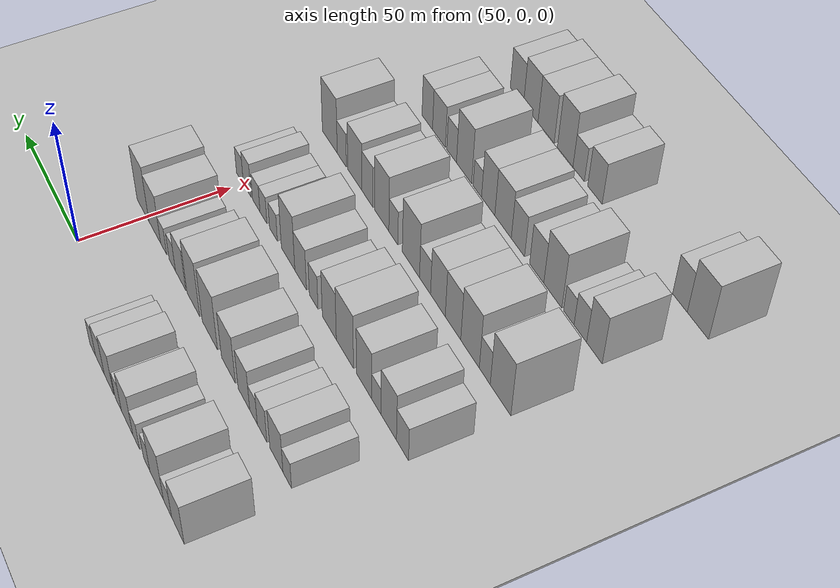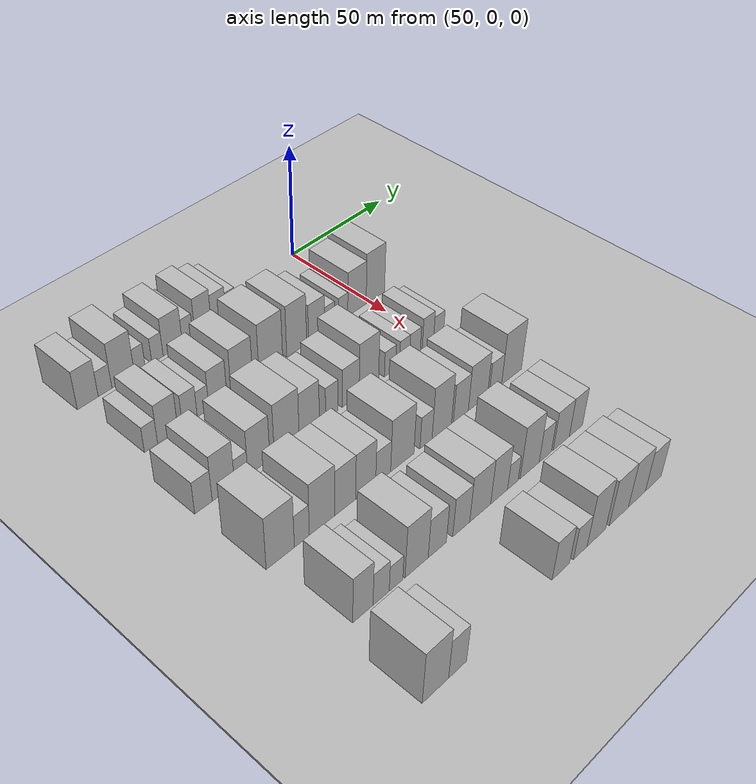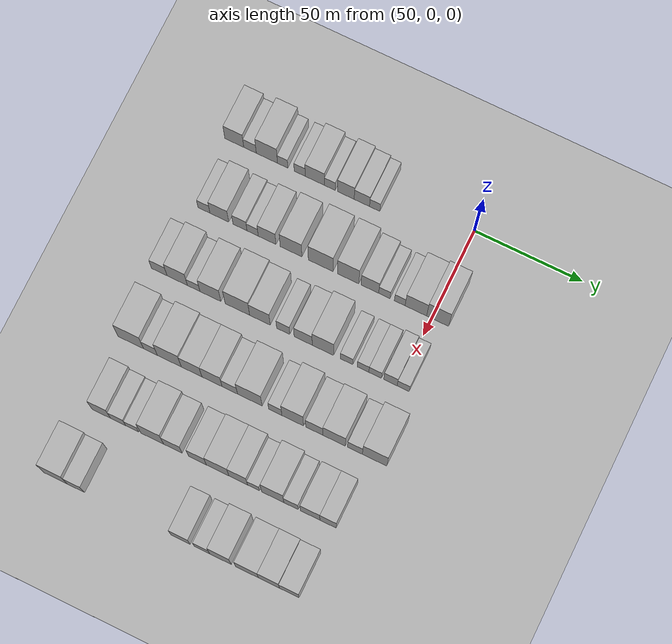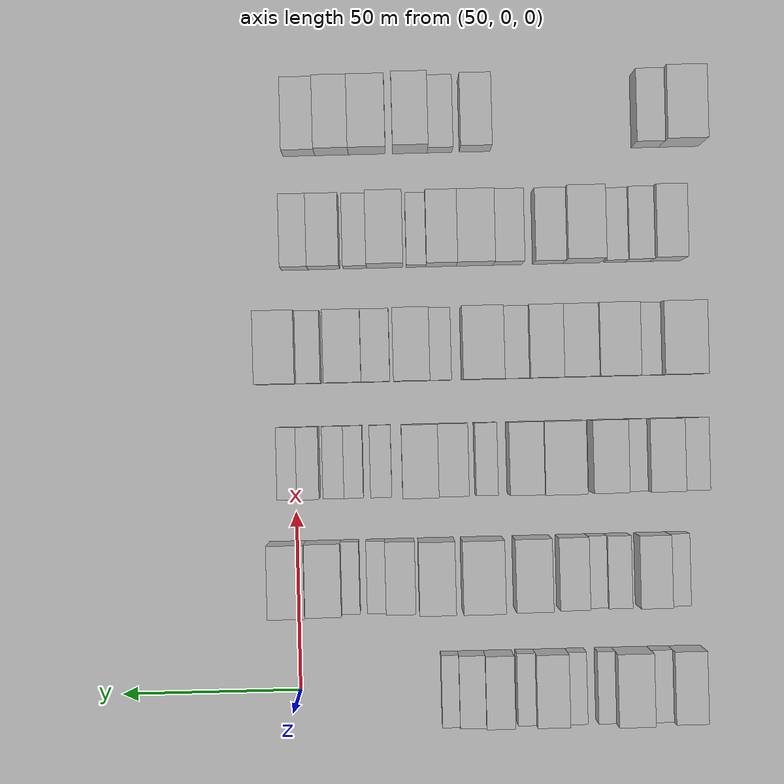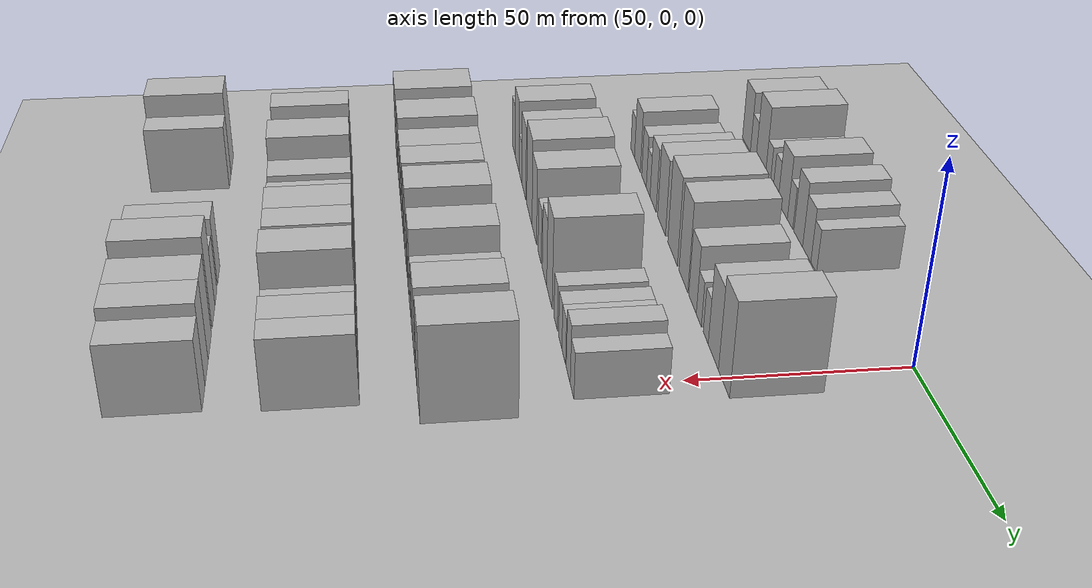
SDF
<sdf version="1.6">
 <world name="default">
  <include><name>ground_plane_1</name><uri>model://HANNAS_ground_plane</uri></include>
  <include>
   <name>ground_plane_2</name>
   <uri>model://HANNAS_ground_plane</uri>
   <pose>100 0 0  0 0 0</pose>
  </include>
  <model name="building_52">
   <static>1</static>
   <pose>50.0000 -107.7741 0 0.000000 0.000000 0.000000</pose>
   <link name="link">
    <pose>0 0 9.00 0 0 0</pose>
    <collision name="collision"><geometry><box><size>20.0000 8.9239 18.0000</size></box></geometry></collision>
    <visual name="visual">
     <cast_shadows>0</cast_shadows>
     <geometry><box><size>20.0000 8.9239 18.0000</size></box></geometry>
     <material>
      <script>
       <uri>model://HANNAS_wall/materials/scripts</uri>
       <uri>model://HANNAS_wall/materials/textures</uri>
       <name>vrc/HANNAS_wall</name>
      </script>
     </material>
    </visual>
   </link>
  </model>
  <model name="building_53">
   <static>1</static>
   <pose>50.0000 -100.3353 0 0.000000 0.000000 0.000000</pose>
   <link name="link">
    <pose>0 0 6.00 0 0 0</pose>
    <collision name="collision"><geometry><box><size>20.0000 5.9537 12.0000</size></box></geometry></collision>
    <visual name="visual">
     <cast_shadows>0</cast_shadows>
     <geometry><box><size>20.0000 5.9537 12.0000</size></box></geometry>
     <material>
      <script>
       <uri>model://HANNAS_wall/materials/scripts</uri>
       <uri>model://HANNAS_wall/materials/textures</uri>
       <name>vrc/HANNAS_wall</name>
      </script>
     </material>
    </visual>
   </link>
  </model>
  <model name="building_54">
   <static>1</static>
   <pose>50.0000 -92.3650 0 0.000000 0.000000 0.000000</pose>
   <link name="link">
    <pose>0 0 10.50 0 0 0</pose>
    <collision name="collision"><geometry><box><size>20.0000 9.9867 21.0000</size></box></geometry></collision>
    <visual name="visual">
     <cast_shadows>0</cast_shadows>
     <geometry><box><size>20.0000 9.9867 21.0000</size></box></geometry>
     <material>
      <script>
       <uri>model://HANNAS_wall/materials/scripts</uri>
       <uri>model://HANNAS_wall/materials/textures</uri>
       <name>vrc/HANNAS_wall</name>
      </script>
     </material>
    </visual>
   </link>
  </model>
  <model name="building_55">
   <static>1</static>
   <pose>50.0000 -84.9421 0 0.000000 0.000000 0.000000</pose>
   <link name="link">
    <pose>0 0 6.00 0 0 0</pose>
    <collision name="collision"><geometry><box><size>20.0000 4.8591 12.0000</size></box></geometry></collision>
    <visual name="visual">
     <cast_shadows>0</cast_shadows>
     <geometry><box><size>20.0000 4.8591 12.0000</size></box></geometry>
     <material>
      <script>
       <uri>model://HANNAS_wall/materials/scripts</uri>
       <uri>model://HANNAS_wall/materials/textures</uri>
       <name>vrc/HANNAS_wall</name>
      </script>
     </material>
    </visual>
   </link>
  </model>
  <model name="building_56">
   <static>1</static>
   <pose>50.0000 -76.9135 0 0.000000 0.000000 0.000000</pose>
   <link name="link">
    <pose>0 0 6.00 0 0 0</pose>
    <collision name="collision"><geometry><box><size>20.0000 5.1982 12.0000</size></box></geometry></collision>
    <visual name="visual">
     <cast_shadows>0</cast_shadows>
     <geometry><box><size>20.0000 5.1982 12.0000</size></box></geometry>
     <material>
      <script>
       <uri>model://HANNAS_wall/materials/scripts</uri>
       <uri>model://HANNAS_wall/materials/textures</uri>
       <name>vrc/HANNAS_wall</name>
      </script>
     </material>
    </visual>
   </link>
  </model>
  <model name="building_57">
   <static>1</static>
   <pose>50.0000 -69.8189 0 0.000000 0.000000 0.000000</pose>
   <link name="link">
    <pose>0 0 9.00 0 0 0</pose>
    <collision name="collision"><geometry><box><size>20.0000 8.9910 18.0000</size></box></geometry></collision>
    <visual name="visual">
     <cast_shadows>0</cast_shadows>
     <geometry><box><size>20.0000 8.9910 18.0000</size></box></geometry>
     <material>
      <script>
       <uri>model://HANNAS_wall/materials/scripts</uri>
       <uri>model://HANNAS_wall/materials/textures</uri>
       <name>vrc/HANNAS_wall</name>
      </script>
     </material>
    </visual>
   </link>
  </model>
  <model name="building_58">
   <static>1</static>
   <pose>50.0000 -62.7859 0 0.000000 0.000000 0.000000</pose>
   <link name="link">
    <pose>0 0 6.00 0 0 0</pose>
    <collision name="collision"><geometry><box><size>20.0000 5.0750 12.0000</size></box></geometry></collision>
    <visual name="visual">
     <cast_shadows>0</cast_shadows>
     <geometry><box><size>20.0000 5.0750 12.0000</size></box></geometry>
     <material>
      <script>
       <uri>model://HANNAS_wall/materials/scripts</uri>
       <uri>model://HANNAS_wall/materials/textures</uri>
       <name>vrc/HANNAS_wall</name>
      </script>
     </material>
    </visual>
   </link>
  </model>
  <model name="building_59">
   <static>1</static>
   <pose>50.0000 -55.3145 0 0.000000 0.000000 0.000000</pose>
   <link name="link">
    <pose>0 0 9.00 0 0 0</pose>
    <collision name="collision"><geometry><box><size>20.0000 7.8678 18.0000</size></box></geometry></collision>
    <visual name="visual">
     <cast_shadows>0</cast_shadows>
     <geometry><box><size>20.0000 7.8678 18.0000</size></box></geometry>
     <material>
      <script>
       <uri>model://HANNAS_wall/materials/scripts</uri>
       <uri>model://HANNAS_wall/materials/textures</uri>
       <name>vrc/HANNAS_wall</name>
      </script>
     </material>
    </visual>
   </link>
  </model>
  <model name="building_60">
   <static>1</static>
   <pose>50.0000 -47.7853 0 0.000000 0.000000 0.000000</pose>
   <link name="link">
    <pose>0 0 7.50 0 0 0</pose>
    <collision name="collision"><geometry><box><size>20.0000 7.1906 15.0000</size></box></geometry></collision>
    <visual name="visual">
     <cast_shadows>0</cast_shadows>
     <geometry><box><size>20.0000 7.1906 15.0000</size></box></geometry>
     <material>
      <script>
       <uri>model://HANNAS_wall/materials/scripts</uri>
       <uri>model://HANNAS_wall/materials/textures</uri>
       <name>vrc/HANNAS_wall</name>
      </script>
     </material>
    </visual>
   </link>
  </model>
  <model name="building_61">
   <static>1</static>
   <pose>50.0000 -41.7685 0 0.000000 0.000000 0.000000</pose>
   <link name="link">
    <pose>0 0 6.00 0 0 0</pose>
    <collision name="collision"><geometry><box><size>20.0000 4.8429 12.0000</size></box></geometry></collision>
    <visual name="visual">
     <cast_shadows>0</cast_shadows>
     <geometry><box><size>20.0000 4.8429 12.0000</size></box></geometry>
     <material>
      <script>
       <uri>model://HANNAS_wall/materials/scripts</uri>
       <uri>model://HANNAS_wall/materials/textures</uri>
       <name>vrc/HANNAS_wall</name>
      </script>
     </material>
    </visual>
   </link>
  </model>
  <model name="building_170">
   <static>1</static>
   <pose>82.0000 -106.0300 0 0.000000 0.000000 0.000000</pose>
   <link name="link">
    <pose>0 0 6.00 0 0 0</pose>
    <collision name="collision"><geometry><box><size>20.0000 5.6180 12.0000</size></box></geometry></collision>
    <visual name="visual">
     <cast_shadows>0</cast_shadows>
     <geometry><box><size>20.0000 5.6180 12.0000</size></box></geometry>
     <material>
      <script>
       <uri>model://HANNAS_wall/materials/scripts</uri>
       <uri>model://HANNAS_wall/materials/textures</uri>
       <name>vrc/HANNAS_wall</name>
      </script>
     </material>
    </visual>
   </link>
  </model>
  <model name="building_171">
   <static>1</static>
   <pose>82.0000 -98.8212 0 0.000000 0.000000 0.000000</pose>
   <link name="link">
    <pose>0 0 9.00 0 0 0</pose>
    <collision name="collision"><geometry><box><size>20.0000 8.7997 18.0000</size></box></geometry></collision>
    <visual name="visual">
     <cast_shadows>0</cast_shadows>
     <geometry><box><size>20.0000 8.7997 18.0000</size></box></geometry>
     <material>
      <script>
       <uri>model://HANNAS_wall/materials/scripts</uri>
       <uri>model://HANNAS_wall/materials/textures</uri>
       <name>vrc/HANNAS_wall</name>
      </script>
     </material>
    </visual>
   </link>
  </model>
  <model name="building_172">
   <static>1</static>
   <pose>82.0000 -89.1392 0 0.000000 0.000000 0.000000</pose>
   <link name="link">
    <pose>0 0 7.50 0 0 0</pose>
    <collision name="collision"><geometry><box><size>20.0000 6.5644 15.0000</size></box></geometry></collision>
    <visual name="visual">
     <cast_shadows>0</cast_shadows>
     <geometry><box><size>20.0000 6.5644 15.0000</size></box></geometry>
     <material>
      <script>
       <uri>model://HANNAS_wall/materials/scripts</uri>
       <uri>model://HANNAS_wall/materials/textures</uri>
       <name>vrc/HANNAS_wall</name>
      </script>
     </material>
    </visual>
   </link>
  </model>
  <model name="building_173">
   <static>1</static>
   <pose>82.0000 -83.2185 0 0.000000 0.000000 0.000000</pose>
   <link name="link">
    <pose>0 0 6.00 0 0 0</pose>
    <collision name="collision"><geometry><box><size>20.0000 5.2769 12.0000</size></box></geometry></collision>
    <visual name="visual">
     <cast_shadows>0</cast_shadows>
     <geometry><box><size>20.0000 5.2769 12.0000</size></box></geometry>
     <material>
      <script>
       <uri>model://HANNAS_wall/materials/scripts</uri>
       <uri>model://HANNAS_wall/materials/textures</uri>
       <name>vrc/HANNAS_wall</name>
      </script>
     </material>
    </visual>
   </link>
  </model>
  <model name="building_174">
   <static>1</static>
   <pose>82.0000 -76.4451 0 0.000000 0.000000 0.000000</pose>
   <link name="link">
    <pose>0 0 9.00 0 0 0</pose>
    <collision name="collision"><geometry><box><size>20.0000 8.2698 18.0000</size></box></geometry></collision>
    <visual name="visual">
     <cast_shadows>0</cast_shadows>
     <geometry><box><size>20.0000 8.2698 18.0000</size></box></geometry>
     <material>
      <script>
       <uri>model://HANNAS_wall/materials/scripts</uri>
       <uri>model://HANNAS_wall/materials/textures</uri>
       <name>vrc/HANNAS_wall</name>
      </script>
     </material>
    </visual>
   </link>
  </model>
  <model name="building_175">
   <static>1</static>
   <pose>82.0000 -65.2521 0 0.000000 0.000000 0.000000</pose>
   <link name="link">
    <pose>0 0 10.50 0 0 0</pose>
    <collision name="collision"><geometry><box><size>20.0000 10.1163 21.0000</size></box></geometry></collision>
    <visual name="visual">
     <cast_shadows>0</cast_shadows>
     <geometry><box><size>20.0000 10.1163 21.0000</size></box></geometry>
     <material>
      <script>
       <uri>model://HANNAS_wall/materials/scripts</uri>
       <uri>model://HANNAS_wall/materials/textures</uri>
       <name>vrc/HANNAS_wall</name>
      </script>
     </material>
    </visual>
   </link>
  </model>
  <model name="building_176">
   <static>1</static>
   <pose>82.0000 -51.4350 0 0.000000 0.000000 0.000000</pose>
   <link name="link">
    <pose>0 0 12.00 0 0 0</pose>
    <collision name="collision"><geometry><box><size>20.0000 11.5180 24.0000</size></box></geometry></collision>
    <visual name="visual">
     <cast_shadows>0</cast_shadows>
     <geometry><box><size>20.0000 11.5180 24.0000</size></box></geometry>
     <material>
      <script>
       <uri>model://HANNAS_wall/materials/scripts</uri>
       <uri>model://HANNAS_wall/materials/textures</uri>
       <name>vrc/HANNAS_wall</name>
      </script>
     </material>
    </visual>
   </link>
  </model>
  <model name="building_177">
   <static>1</static>
   <pose>82.0000 -38.7031 0 0.000000 0.000000 0.000000</pose>
   <link name="link">
    <pose>0 0 12.00 0 0 0</pose>
    <collision name="collision"><geometry><box><size>20.0000 9.9456 24.0000</size></box></geometry></collision>
    <visual name="visual">
     <cast_shadows>0</cast_shadows>
     <geometry><box><size>20.0000 9.9456 24.0000</size></box></geometry>
     <material>
      <script>
       <uri>model://HANNAS_wall/materials/scripts</uri>
       <uri>model://HANNAS_wall/materials/textures</uri>
       <name>vrc/HANNAS_wall</name>
      </script>
     </material>
    </visual>
   </link>
  </model>
  <model name="building_178">
   <static>1</static>
   <pose>82.0000 -28.6366 0 0.000000 0.000000 0.000000</pose>
   <link name="link">
    <pose>0 0 9.00 0 0 0</pose>
    <collision name="collision"><geometry><box><size>20.0000 8.1874 18.0000</size></box></geometry></collision>
    <visual name="visual">
     <cast_shadows>0</cast_shadows>
     <geometry><box><size>20.0000 8.1874 18.0000</size></box></geometry>
     <material>
      <script>
       <uri>model://HANNAS_wall/materials/scripts</uri>
       <uri>model://HANNAS_wall/materials/textures</uri>
       <name>vrc/HANNAS_wall</name>
      </script>
     </material>
    </visual>
   </link>
  </model>
  <model name="building_179">
   <static>1</static>
   <pose>82.0000 -21.9274 0 0.000000 0.000000 0.000000</pose>
   <link name="link">
    <pose>0 0 6.00 0 0 0</pose>
    <collision name="collision"><geometry><box><size>20.0000 5.2311 12.0000</size></box></geometry></collision>
    <visual name="visual">
     <cast_shadows>0</cast_shadows>
     <geometry><box><size>20.0000 5.2311 12.0000</size></box></geometry>
     <material>
      <script>
       <uri>model://HANNAS_wall/materials/scripts</uri>
       <uri>model://HANNAS_wall/materials/textures</uri>
       <name>vrc/HANNAS_wall</name>
      </script>
     </material>
    </visual>
   </link>
  </model>
  <model name="building_180">
   <static>1</static>
   <pose>82.0000 -14.8178 0 0.000000 0.000000 0.000000</pose>
   <link name="link">
    <pose>0 0 6.00 0 0 0</pose>
    <collision name="collision"><geometry><box><size>20.0000 4.9882 12.0000</size></box></geometry></collision>
    <visual name="visual">
     <cast_shadows>0</cast_shadows>
     <geometry><box><size>20.0000 4.9882 12.0000</size></box></geometry>
     <material>
      <script>
       <uri>model://HANNAS_wall/materials/scripts</uri>
       <uri>model://HANNAS_wall/materials/textures</uri>
       <name>vrc/HANNAS_wall</name>
      </script>
     </material>
    </visual>
   </link>
  </model>
  <model name="building_181">
   <static>1</static>
   <pose>82.0000 -7.3629 0 0.000000 0.000000 0.000000</pose>
   <link name="link">
    <pose>0 0 10.50 0 0 0</pose>
    <collision name="collision"><geometry><box><size>20.0000 9.9216 21.0000</size></box></geometry></collision>
    <visual name="visual">
     <cast_shadows>0</cast_shadows>
     <geometry><box><size>20.0000 9.9216 21.0000</size></box></geometry>
     <material>
      <script>
       <uri>model://HANNAS_wall/materials/scripts</uri>
       <uri>model://HANNAS_wall/materials/textures</uri>
       <name>vrc/HANNAS_wall</name>
      </script>
     </material>
    </visual>
   </link>
  </model>
  <model name="building_182">
   <static>1</static>
   <pose>82.0000 2.6659 0 0.000000 0.000000 0.000000</pose>
   <link name="link">
    <pose>0 0 12.00 0 0 0</pose>
    <collision name="collision"><geometry><box><size>20.0000 10.1360 24.0000</size></box></geometry></collision>
    <visual name="visual">
     <cast_shadows>0</cast_shadows>
     <geometry><box><size>20.0000 10.1360 24.0000</size></box></geometry>
     <material>
      <script>
       <uri>model://HANNAS_wall/materials/scripts</uri>
       <uri>model://HANNAS_wall/materials/textures</uri>
       <name>vrc/HANNAS_wall</name>
      </script>
     </material>
    </visual>
   </link>
  </model>
  <model name="building_298">
   <static>1</static>
   <pose>114.0000 -110.9185 0 0.000000 0.000000 0.000000</pose>
   <link name="link">
    <pose>0 0 7.50 0 0 0</pose>
    <collision name="collision"><geometry><box><size>20.0000 7.2933 15.0000</size></box></geometry></collision>
    <visual name="visual">
     <cast_shadows>0</cast_shadows>
     <geometry><box><size>20.0000 7.2933 15.0000</size></box></geometry>
     <material>
      <script>
       <uri>model://HANNAS_wall/materials/scripts</uri>
       <uri>model://HANNAS_wall/materials/textures</uri>
       <name>vrc/HANNAS_wall</name>
      </script>
     </material>
    </visual>
   </link>
  </model>
  <model name="building_299">
   <static>1</static>
   <pose>114.0000 -102.4910 0 0.000000 0.000000 0.000000</pose>
   <link name="link">
    <pose>0 0 10.50 0 0 0</pose>
    <collision name="collision"><geometry><box><size>20.0000 9.5617 21.0000</size></box></geometry></collision>
    <visual name="visual">
     <cast_shadows>0</cast_shadows>
     <geometry><box><size>20.0000 9.5617 21.0000</size></box></geometry>
     <material>
      <script>
       <uri>model://HANNAS_wall/materials/scripts</uri>
       <uri>model://HANNAS_wall/materials/textures</uri>
       <name>vrc/HANNAS_wall</name>
      </script>
     </material>
    </visual>
   </link>
  </model>
  <model name="building_300">
   <static>1</static>
   <pose>114.0000 -94.7883 0 0.000000 0.000000 0.000000</pose>
   <link name="link">
    <pose>0 0 6.00 0 0 0</pose>
    <collision name="collision"><geometry><box><size>20.0000 5.8437 12.0000</size></box></geometry></collision>
    <visual name="visual">
     <cast_shadows>0</cast_shadows>
     <geometry><box><size>20.0000 5.8437 12.0000</size></box></geometry>
     <material>
      <script>
       <uri>model://HANNAS_wall/materials/scripts</uri>
       <uri>model://HANNAS_wall/materials/textures</uri>
       <name>vrc/HANNAS_wall</name>
      </script>
     </material>
    </visual>
   </link>
  </model>
  <model name="building_301">
   <static>1</static>
   <pose>114.0000 -86.9838 0 0.000000 0.000000 0.000000</pose>
   <link name="link">
    <pose>0 0 10.50 0 0 0</pose>
    <collision name="collision"><geometry><box><size>20.0000 9.7654 21.0000</size></box></geometry></collision>
    <visual name="visual">
     <cast_shadows>0</cast_shadows>
     <geometry><box><size>20.0000 9.7654 21.0000</size></box></geometry>
     <material>
      <script>
       <uri>model://HANNAS_wall/materials/scripts</uri>
       <uri>model://HANNAS_wall/materials/textures</uri>
       <name>vrc/HANNAS_wall</name>
      </script>
     </material>
    </visual>
   </link>
  </model>
  <model name="building_302">
   <static>1</static>
   <pose>114.0000 -74.4024 0 0.000000 0.000000 0.000000</pose>
   <link name="link">
    <pose>0 0 12.00 0 0 0</pose>
    <collision name="collision"><geometry><box><size>20.0000 11.3974 24.0000</size></box></geometry></collision>
    <visual name="visual">
     <cast_shadows>0</cast_shadows>
     <geometry><box><size>20.0000 11.3974 24.0000</size></box></geometry>
     <material>
      <script>
       <uri>model://HANNAS_wall/materials/scripts</uri>
       <uri>model://HANNAS_wall/materials/textures</uri>
       <name>vrc/HANNAS_wall</name>
      </script>
     </material>
    </visual>
   </link>
  </model>
  <model name="building_303">
   <static>1</static>
   <pose>114.0000 -63.9458 0 0.000000 0.000000 0.000000</pose>
   <link name="link">
    <pose>0 0 10.50 0 0 0</pose>
    <collision name="collision"><geometry><box><size>20.0000 9.5159 21.0000</size></box></geometry></collision>
    <visual name="visual">
     <cast_shadows>0</cast_shadows>
     <geometry><box><size>20.0000 9.5159 21.0000</size></box></geometry>
     <material>
      <script>
       <uri>model://HANNAS_wall/materials/scripts</uri>
       <uri>model://HANNAS_wall/materials/textures</uri>
       <name>vrc/HANNAS_wall</name>
      </script>
     </material>
    </visual>
   </link>
  </model>
  <model name="building_304">
   <static>1</static>
   <pose>114.0000 -53.1494 0 0.000000 0.000000 0.000000</pose>
   <link name="link">
    <pose>0 0 7.50 0 0 0</pose>
    <collision name="collision"><geometry><box><size>20.0000 6.0769 15.0000</size></box></geometry></collision>
    <visual name="visual">
     <cast_shadows>0</cast_shadows>
     <geometry><box><size>20.0000 6.0769 15.0000</size></box></geometry>
     <material>
      <script>
       <uri>model://HANNAS_wall/materials/scripts</uri>
       <uri>model://HANNAS_wall/materials/textures</uri>
       <name>vrc/HANNAS_wall</name>
      </script>
     </material>
    </visual>
   </link>
  </model>
  <model name="building_305">
   <static>1</static>
   <pose>114.0000 -43.9148 0 0.000000 0.000000 0.000000</pose>
   <link name="link">
    <pose>0 0 9.00 0 0 0</pose>
    <collision name="collision"><geometry><box><size>20.0000 8.3922 18.0000</size></box></geometry></collision>
    <visual name="visual">
     <cast_shadows>0</cast_shadows>
     <geometry><box><size>20.0000 8.3922 18.0000</size></box></geometry>
     <material>
      <script>
       <uri>model://HANNAS_wall/materials/scripts</uri>
       <uri>model://HANNAS_wall/materials/textures</uri>
       <name>vrc/HANNAS_wall</name>
      </script>
     </material>
    </visual>
   </link>
  </model>
  <model name="building_306">
   <static>1</static>
   <pose>114.0000 -34.7926 0 0.000000 0.000000 0.000000</pose>
   <link name="link">
    <pose>0 0 12.00 0 0 0</pose>
    <collision name="collision"><geometry><box><size>20.0000 9.8522 24.0000</size></box></geometry></collision>
    <visual name="visual">
     <cast_shadows>0</cast_shadows>
     <geometry><box><size>20.0000 9.8522 24.0000</size></box></geometry>
     <material>
      <script>
       <uri>model://HANNAS_wall/materials/scripts</uri>
       <uri>model://HANNAS_wall/materials/textures</uri>
       <name>vrc/HANNAS_wall</name>
      </script>
     </material>
    </visual>
   </link>
  </model>
  <model name="building_307">
   <static>1</static>
   <pose>114.0000 -23.9274 0 0.000000 0.000000 0.000000</pose>
   <link name="link">
    <pose>0 0 6.00 0 0 0</pose>
    <collision name="collision"><geometry><box><size>20.0000 5.8782 12.0000</size></box></geometry></collision>
    <visual name="visual">
     <cast_shadows>0</cast_shadows>
     <geometry><box><size>20.0000 5.8782 12.0000</size></box></geometry>
     <material>
      <script>
       <uri>model://HANNAS_wall/materials/scripts</uri>
       <uri>model://HANNAS_wall/materials/textures</uri>
       <name>vrc/HANNAS_wall</name>
      </script>
     </material>
    </visual>
   </link>
  </model>
  <model name="building_308">
   <static>1</static>
   <pose>114.0000 -16.3177 0 0.000000 0.000000 0.000000</pose>
   <link name="link">
    <pose>0 0 6.00 0 0 0</pose>
    <collision name="collision"><geometry><box><size>20.0000 5.3412 12.0000</size></box></geometry></collision>
    <visual name="visual">
     <cast_shadows>0</cast_shadows>
     <geometry><box><size>20.0000 5.3412 12.0000</size></box></geometry>
     <material>
      <script>
       <uri>model://HANNAS_wall/materials/scripts</uri>
       <uri>model://HANNAS_wall/materials/textures</uri>
       <name>vrc/HANNAS_wall</name>
      </script>
     </material>
    </visual>
   </link>
  </model>
  <model name="building_309">
   <static>1</static>
   <pose>114.0000 -10.7430 0 0.000000 0.000000 0.000000</pose>
   <link name="link">
    <pose>0 0 6.00 0 0 0</pose>
    <collision name="collision"><geometry><box><size>20.0000 5.8083 12.0000</size></box></geometry></collision>
    <visual name="visual">
     <cast_shadows>0</cast_shadows>
     <geometry><box><size>20.0000 5.8083 12.0000</size></box></geometry>
     <material>
      <script>
       <uri>model://HANNAS_wall/materials/scripts</uri>
       <uri>model://HANNAS_wall/materials/textures</uri>
       <name>vrc/HANNAS_wall</name>
      </script>
     </material>
    </visual>
   </link>
  </model>
  <model name="building_310">
   <static>1</static>
   <pose>114.0000 -3.7586 0 0.000000 0.000000 0.000000</pose>
   <link name="link">
    <pose>0 0 7.50 0 0 0</pose>
    <collision name="collision"><geometry><box><size>20.0000 6.1606 15.0000</size></box></geometry></collision>
    <visual name="visual">
     <cast_shadows>0</cast_shadows>
     <geometry><box><size>20.0000 6.1606 15.0000</size></box></geometry>
     <material>
      <script>
       <uri>model://HANNAS_wall/materials/scripts</uri>
       <uri>model://HANNAS_wall/materials/textures</uri>
       <name>vrc/HANNAS_wall</name>
      </script>
     </material>
    </visual>
   </link>
  </model>
  <model name="building_311">
   <static>1</static>
   <pose>114.0000 2.0962 0 0.000000 0.000000 0.000000</pose>
   <link name="link">
    <pose>0 0 6.00 0 0 0</pose>
    <collision name="collision"><geometry><box><size>20.0000 5.5489 12.0000</size></box></geometry></collision>
    <visual name="visual">
     <cast_shadows>0</cast_shadows>
     <geometry><box><size>20.0000 5.5489 12.0000</size></box></geometry>
     <material>
      <script>
       <uri>model://HANNAS_wall/materials/scripts</uri>
       <uri>model://HANNAS_wall/materials/textures</uri>
       <name>vrc/HANNAS_wall</name>
      </script>
     </material>
    </visual>
   </link>
  </model>
  <model name="building_415">
   <static>1</static>
   <pose>146.0000 -107.8850 0 0.000000 0.000000 0.000000</pose>
   <link name="link">
    <pose>0 0 12.00 0 0 0</pose>
    <collision name="collision"><geometry><box><size>20.0000 11.8488 24.0000</size></box></geometry></collision>
    <visual name="visual">
     <cast_shadows>0</cast_shadows>
     <geometry><box><size>20.0000 11.8488 24.0000</size></box></geometry>
     <material>
      <script>
       <uri>model://HANNAS_wall/materials/scripts</uri>
       <uri>model://HANNAS_wall/materials/textures</uri>
       <name>vrc/HANNAS_wall</name>
      </script>
     </material>
    </visual>
   </link>
  </model>
  <model name="building_416">
   <static>1</static>
   <pose>146.0000 -98.7507 0 0.000000 0.000000 0.000000</pose>
   <link name="link">
    <pose>0 0 7.50 0 0 0</pose>
    <collision name="collision"><geometry><box><size>20.0000 6.4197 15.0000</size></box></geometry></collision>
    <visual name="visual">
     <cast_shadows>0</cast_shadows>
     <geometry><box><size>20.0000 6.4197 15.0000</size></box></geometry>
     <material>
      <script>
       <uri>model://HANNAS_wall/materials/scripts</uri>
       <uri>model://HANNAS_wall/materials/textures</uri>
       <name>vrc/HANNAS_wall</name>
      </script>
     </material>
    </visual>
   </link>
  </model>
  <model name="building_417">
   <static>1</static>
   <pose>146.0000 -89.9720 0 0.000000 0.000000 0.000000</pose>
   <link name="link">
    <pose>0 0 12.00 0 0 0</pose>
    <collision name="collision"><geometry><box><size>20.0000 11.1377 24.0000</size></box></geometry></collision>
    <visual name="visual">
     <cast_shadows>0</cast_shadows>
     <geometry><box><size>20.0000 11.1377 24.0000</size></box></geometry>
     <material>
      <script>
       <uri>model://HANNAS_wall/materials/scripts</uri>
       <uri>model://HANNAS_wall/materials/textures</uri>
       <name>vrc/HANNAS_wall</name>
      </script>
     </material>
    </visual>
   </link>
  </model>
  <model name="building_418">
   <static>1</static>
   <pose>146.0000 -79.6216 0 0.000000 0.000000 0.000000</pose>
   <link name="link">
    <pose>0 0 10.50 0 0 0</pose>
    <collision name="collision"><geometry><box><size>20.0000 9.5632 21.0000</size></box></geometry></collision>
    <visual name="visual">
     <cast_shadows>0</cast_shadows>
     <geometry><box><size>20.0000 9.5632 21.0000</size></box></geometry>
     <material>
      <script>
       <uri>model://HANNAS_wall/materials/scripts</uri>
       <uri>model://HANNAS_wall/materials/textures</uri>
       <name>vrc/HANNAS_wall</name>
      </script>
     </material>
    </visual>
   </link>
  </model>
  <model name="building_419">
   <static>1</static>
   <pose>146.0000 -70.1855 0 0.000000 0.000000 0.000000</pose>
   <link name="link">
    <pose>0 0 10.50 0 0 0</pose>
    <collision name="collision"><geometry><box><size>20.0000 9.3090 21.0000</size></box></geometry></collision>
    <visual name="visual">
     <cast_shadows>0</cast_shadows>
     <geometry><box><size>20.0000 9.3090 21.0000</size></box></geometry>
     <material>
      <script>
       <uri>model://HANNAS_wall/materials/scripts</uri>
       <uri>model://HANNAS_wall/materials/textures</uri>
       <name>vrc/HANNAS_wall</name>
      </script>
     </material>
    </visual>
   </link>
  </model>
  <model name="building_420">
   <static>1</static>
   <pose>146.0000 -61.9744 0 0.000000 0.000000 0.000000</pose>
   <link name="link">
    <pose>0 0 7.50 0 0 0</pose>
    <collision name="collision"><geometry><box><size>20.0000 7.1132 15.0000</size></box></geometry></collision>
    <visual name="visual">
     <cast_shadows>0</cast_shadows>
     <geometry><box><size>20.0000 7.1132 15.0000</size></box></geometry>
     <material>
      <script>
       <uri>model://HANNAS_wall/materials/scripts</uri>
       <uri>model://HANNAS_wall/materials/textures</uri>
       <name>vrc/HANNAS_wall</name>
      </script>
     </material>
    </visual>
   </link>
  </model>
  <model name="building_421">
   <static>1</static>
   <pose>146.0000 -52.7507 0 0.000000 0.000000 0.000000</pose>
   <link name="link">
    <pose>0 0 12.00 0 0 0</pose>
    <collision name="collision"><geometry><box><size>20.0000 11.3343 24.0000</size></box></geometry></collision>
    <visual name="visual">
     <cast_shadows>0</cast_shadows>
     <geometry><box><size>20.0000 11.3343 24.0000</size></box></geometry>
     <material>
      <script>
       <uri>model://HANNAS_wall/materials/scripts</uri>
       <uri>model://HANNAS_wall/materials/textures</uri>
       <name>vrc/HANNAS_wall</name>
      </script>
     </material>
    </visual>
   </link>
  </model>
  <model name="building_422">
   <static>1</static>
   <pose>146.0000 -41.0544 0 0.000000 0.000000 0.000000</pose>
   <link name="link">
    <pose>0 0 7.50 0 0 0</pose>
    <collision name="collision"><geometry><box><size>20.0000 6.0582 15.0000</size></box></geometry></collision>
    <visual name="visual">
     <cast_shadows>0</cast_shadows>
     <geometry><box><size>20.0000 6.0582 15.0000</size></box></geometry>
     <material>
      <script>
       <uri>model://HANNAS_wall/materials/scripts</uri>
       <uri>model://HANNAS_wall/materials/textures</uri>
       <name>vrc/HANNAS_wall</name>
      </script>
     </material>
    </visual>
   </link>
  </model>
  <model name="building_423">
   <static>1</static>
   <pose>146.0000 -33.0567 0 0.000000 0.000000 0.000000</pose>
   <link name="link">
    <pose>0 0 12.00 0 0 0</pose>
    <collision name="collision"><geometry><box><size>20.0000 9.9373 24.0000</size></box></geometry></collision>
    <visual name="visual">
     <cast_shadows>0</cast_shadows>
     <geometry><box><size>20.0000 9.9373 24.0000</size></box></geometry>
     <material>
      <script>
       <uri>model://HANNAS_wall/materials/scripts</uri>
       <uri>model://HANNAS_wall/materials/textures</uri>
       <name>vrc/HANNAS_wall</name>
      </script>
     </material>
    </visual>
   </link>
  </model>
  <model name="building_424">
   <static>1</static>
   <pose>146.0000 -23.1585 0 0.000000 0.000000 0.000000</pose>
   <link name="link">
    <pose>0 0 9.00 0 0 0</pose>
    <collision name="collision"><geometry><box><size>20.0000 7.8590 18.0000</size></box></geometry></collision>
    <visual name="visual">
     <cast_shadows>0</cast_shadows>
     <geometry><box><size>20.0000 7.8590 18.0000</size></box></geometry>
     <material>
      <script>
       <uri>model://HANNAS_wall/materials/scripts</uri>
       <uri>model://HANNAS_wall/materials/textures</uri>
       <name>vrc/HANNAS_wall</name>
      </script>
     </material>
    </visual>
   </link>
  </model>
  <model name="building_425">
   <static>1</static>
   <pose>146.0000 -14.0882 0 0.000000 0.000000 0.000000</pose>
   <link name="link">
    <pose>0 0 10.50 0 0 0</pose>
    <collision name="collision"><geometry><box><size>20.0000 10.2817 21.0000</size></box></geometry></collision>
    <visual name="visual">
     <cast_shadows>0</cast_shadows>
     <geometry><box><size>20.0000 10.2817 21.0000</size></box></geometry>
     <material>
      <script>
       <uri>model://HANNAS_wall/materials/scripts</uri>
       <uri>model://HANNAS_wall/materials/textures</uri>
       <name>vrc/HANNAS_wall</name>
      </script>
     </material>
    </visual>
   </link>
  </model>
  <model name="building_426">
   <static>1</static>
   <pose>146.0000 -4.5714 0 0.000000 0.000000 0.000000</pose>
   <link name="link">
    <pose>0 0 7.50 0 0 0</pose>
    <collision name="collision"><geometry><box><size>20.0000 6.7519 15.0000</size></box></geometry></collision>
    <visual name="visual">
     <cast_shadows>0</cast_shadows>
     <geometry><box><size>20.0000 6.7519 15.0000</size></box></geometry>
     <material>
      <script>
       <uri>model://HANNAS_wall/materials/scripts</uri>
       <uri>model://HANNAS_wall/materials/textures</uri>
       <name>vrc/HANNAS_wall</name>
      </script>
     </material>
    </visual>
   </link>
  </model>
  <model name="building_427">
   <static>1</static>
   <pose>146.0000 4.3771 0 0.000000 0.000000 0.000000</pose>
   <link name="link">
    <pose>0 0 12.00 0 0 0</pose>
    <collision name="collision"><geometry><box><size>20.0000 11.1451 24.0000</size></box></geometry></collision>
    <visual name="visual">
     <cast_shadows>0</cast_shadows>
     <geometry><box><size>20.0000 11.1451 24.0000</size></box></geometry>
     <material>
      <script>
       <uri>model://HANNAS_wall/materials/scripts</uri>
       <uri>model://HANNAS_wall/materials/textures</uri>
       <name>vrc/HANNAS_wall</name>
      </script>
     </material>
    </visual>
   </link>
  </model>
  <model name="building_529">
   <static>1</static>
   <pose>178.0000 -105.1641 0 0.000000 0.000000 0.000000</pose>
   <link name="link">
    <pose>0 0 10.50 0 0 0</pose>
    <collision name="collision"><geometry><box><size>20.0000 8.5698 21.0000</size></box></geometry></collision>
    <visual name="visual">
     <cast_shadows>0</cast_shadows>
     <geometry><box><size>20.0000 8.5698 21.0000</size></box></geometry>
     <material>
      <script>
       <uri>model://HANNAS_wall/materials/scripts</uri>
       <uri>model://HANNAS_wall/materials/textures</uri>
       <name>vrc/HANNAS_wall</name>
      </script>
     </material>
    </visual>
   </link>
  </model>
  <model name="building_530">
   <static>1</static>
   <pose>178.0000 -97.3598 0 0.000000 0.000000 0.000000</pose>
   <link name="link">
    <pose>0 0 7.50 0 0 0</pose>
    <collision name="collision"><geometry><box><size>20.0000 7.0388 15.0000</size></box></geometry></collision>
    <visual name="visual">
     <cast_shadows>0</cast_shadows>
     <geometry><box><size>20.0000 7.0388 15.0000</size></box></geometry>
     <material>
      <script>
       <uri>model://HANNAS_wall/materials/scripts</uri>
       <uri>model://HANNAS_wall/materials/textures</uri>
       <name>vrc/HANNAS_wall</name>
      </script>
     </material>
    </visual>
   </link>
  </model>
  <model name="building_531">
   <static>1</static>
   <pose>178.0000 -90.8548 0 0.000000 0.000000 0.000000</pose>
   <link name="link">
    <pose>0 0 6.00 0 0 0</pose>
    <collision name="collision"><geometry><box><size>20.0000 5.9710 12.0000</size></box></geometry></collision>
    <visual name="visual">
     <cast_shadows>0</cast_shadows>
     <geometry><box><size>20.0000 5.9710 12.0000</size></box></geometry>
     <material>
      <script>
       <uri>model://HANNAS_wall/materials/scripts</uri>
       <uri>model://HANNAS_wall/materials/textures</uri>
       <name>vrc/HANNAS_wall</name>
      </script>
     </material>
    </visual>
   </link>
  </model>
  <model name="building_532">
   <static>1</static>
   <pose>178.0000 -81.6304 0 0.000000 0.000000 0.000000</pose>
   <link name="link">
    <pose>0 0 12.00 0 0 0</pose>
    <collision name="collision"><geometry><box><size>20.0000 10.4779 24.0000</size></box></geometry></collision>
    <visual name="visual">
     <cast_shadows>0</cast_shadows>
     <geometry><box><size>20.0000 10.4779 24.0000</size></box></geometry>
     <material>
      <script>
       <uri>model://HANNAS_wall/materials/scripts</uri>
       <uri>model://HANNAS_wall/materials/textures</uri>
       <name>vrc/HANNAS_wall</name>
      </script>
     </material>
    </visual>
   </link>
  </model>
  <model name="building_533">
   <static>1</static>
   <pose>178.0000 -72.1485 0 0.000000 0.000000 0.000000</pose>
   <link name="link">
    <pose>0 0 9.00 0 0 0</pose>
    <collision name="collision"><geometry><box><size>20.0000 8.4860 18.0000</size></box></geometry></collision>
    <visual name="visual">
     <cast_shadows>0</cast_shadows>
     <geometry><box><size>20.0000 8.4860 18.0000</size></box></geometry>
     <material>
      <script>
       <uri>model://HANNAS_wall/materials/scripts</uri>
       <uri>model://HANNAS_wall/materials/textures</uri>
       <name>vrc/HANNAS_wall</name>
      </script>
     </material>
    </visual>
   </link>
  </model>
  <model name="building_534">
   <static>1</static>
   <pose>178.0000 -60.8300 0 0.000000 0.000000 0.000000</pose>
   <link name="link">
    <pose>0 0 9.00 0 0 0</pose>
    <collision name="collision"><geometry><box><size>20.0000 8.1510 18.0000</size></box></geometry></collision>
    <visual name="visual">
     <cast_shadows>0</cast_shadows>
     <geometry><box><size>20.0000 8.1510 18.0000</size></box></geometry>
     <material>
      <script>
       <uri>model://HANNAS_wall/materials/scripts</uri>
       <uri>model://HANNAS_wall/materials/textures</uri>
       <name>vrc/HANNAS_wall</name>
      </script>
     </material>
    </visual>
   </link>
  </model>
  <model name="building_535">
   <static>1</static>
   <pose>178.0000 -51.5942 0 0.000000 0.000000 0.000000</pose>
   <link name="link">
    <pose>0 0 10.50 0 0 0</pose>
    <collision name="collision"><geometry><box><size>20.0000 10.3205 21.0000</size></box></geometry></collision>
    <visual name="visual">
     <cast_shadows>0</cast_shadows>
     <geometry><box><size>20.0000 10.3205 21.0000</size></box></geometry>
     <material>
      <script>
       <uri>model://HANNAS_wall/materials/scripts</uri>
       <uri>model://HANNAS_wall/materials/textures</uri>
       <name>vrc/HANNAS_wall</name>
      </script>
     </material>
    </visual>
   </link>
  </model>
  <model name="building_536">
   <static>1</static>
   <pose>178.0000 -42.1791 0 0.000000 0.000000 0.000000</pose>
   <link name="link">
    <pose>0 0 10.50 0 0 0</pose>
    <collision name="collision"><geometry><box><size>20.0000 8.5099 21.0000</size></box></geometry></collision>
    <visual name="visual">
     <cast_shadows>0</cast_shadows>
     <geometry><box><size>20.0000 8.5099 21.0000</size></box></geometry>
     <material>
      <script>
       <uri>model://HANNAS_wall/materials/scripts</uri>
       <uri>model://HANNAS_wall/materials/textures</uri>
       <name>vrc/HANNAS_wall</name>
      </script>
     </material>
    </visual>
   </link>
  </model>
  <model name="building_537">
   <static>1</static>
   <pose>178.0000 -35.1860 0 0.000000 0.000000 0.000000</pose>
   <link name="link">
    <pose>0 0 6.00 0 0 0</pose>
    <collision name="collision"><geometry><box><size>20.0000 5.4763 12.0000</size></box></geometry></collision>
    <visual name="visual">
     <cast_shadows>0</cast_shadows>
     <geometry><box><size>20.0000 5.4763 12.0000</size></box></geometry>
     <material>
      <script>
       <uri>model://HANNAS_wall/materials/scripts</uri>
       <uri>model://HANNAS_wall/materials/textures</uri>
       <name>vrc/HANNAS_wall</name>
      </script>
     </material>
    </visual>
   </link>
  </model>
  <model name="building_538">
   <static>1</static>
   <pose>178.0000 -26.4154 0 0.000000 0.000000 0.000000</pose>
   <link name="link">
    <pose>0 0 12.00 0 0 0</pose>
    <collision name="collision"><geometry><box><size>20.0000 10.0648 24.0000</size></box></geometry></collision>
    <visual name="visual">
     <cast_shadows>0</cast_shadows>
     <geometry><box><size>20.0000 10.0648 24.0000</size></box></geometry>
     <material>
      <script>
       <uri>model://HANNAS_wall/materials/scripts</uri>
       <uri>model://HANNAS_wall/materials/textures</uri>
       <name>vrc/HANNAS_wall</name>
      </script>
     </material>
    </visual>
   </link>
  </model>
  <model name="building_539">
   <static>1</static>
   <pose>178.0000 -18.1074 0 0.000000 0.000000 0.000000</pose>
   <link name="link">
    <pose>0 0 7.50 0 0 0</pose>
    <collision name="collision"><geometry><box><size>20.0000 6.5513 15.0000</size></box></geometry></collision>
    <visual name="visual">
     <cast_shadows>0</cast_shadows>
     <geometry><box><size>20.0000 6.5513 15.0000</size></box></geometry>
     <material>
      <script>
       <uri>model://HANNAS_wall/materials/scripts</uri>
       <uri>model://HANNAS_wall/materials/textures</uri>
       <name>vrc/HANNAS_wall</name>
      </script>
     </material>
    </visual>
   </link>
  </model>
  <model name="building_540">
   <static>1</static>
   <pose>178.0000 -9.4080 0 0.000000 0.000000 0.000000</pose>
   <link name="link">
    <pose>0 0 9.00 0 0 0</pose>
    <collision name="collision"><geometry><box><size>20.0000 8.8475 18.0000</size></box></geometry></collision>
    <visual name="visual">
     <cast_shadows>0</cast_shadows>
     <geometry><box><size>20.0000 8.8475 18.0000</size></box></geometry>
     <material>
      <script>
       <uri>model://HANNAS_wall/materials/scripts</uri>
       <uri>model://HANNAS_wall/materials/textures</uri>
       <name>vrc/HANNAS_wall</name>
      </script>
     </material>
    </visual>
   </link>
  </model>
  <model name="building_541">
   <static>1</static>
   <pose>178.0000 -1.2815 0 0.000000 0.000000 0.000000</pose>
   <link name="link">
    <pose>0 0 9.00 0 0 0</pose>
    <collision name="collision"><geometry><box><size>20.0000 7.4055 18.0000</size></box></geometry></collision>
    <visual name="visual">
     <cast_shadows>0</cast_shadows>
     <geometry><box><size>20.0000 7.4055 18.0000</size></box></geometry>
     <material>
      <script>
       <uri>model://HANNAS_wall/materials/scripts</uri>
       <uri>model://HANNAS_wall/materials/textures</uri>
       <name>vrc/HANNAS_wall</name>
      </script>
     </material>
    </visual>
   </link>
  </model>
  <model name="building_650">
   <static>1</static>
   <pose>210.0000 -109.7220 0 0.000000 0.000000 0.000000</pose>
   <link name="link">
    <pose>0 0 12.00 0 0 0</pose>
    <collision name="collision"><geometry><box><size>20.0000 11.0772 24.0000</size></box></geometry></collision>
    <visual name="visual">
     <cast_shadows>0</cast_shadows>
     <geometry><box><size>20.0000 11.0772 24.0000</size></box></geometry>
     <material>
      <script>
       <uri>model://HANNAS_wall/materials/scripts</uri>
       <uri>model://HANNAS_wall/materials/textures</uri>
       <name>vrc/HANNAS_wall</name>
      </script>
     </material>
    </visual>
   </link>
  </model>
  <model name="building_651">
   <static>1</static>
   <pose>210.0000 -100.2877 0 0.000000 0.000000 0.000000</pose>
   <link name="link">
    <pose>0 0 9.00 0 0 0</pose>
    <collision name="collision"><geometry><box><size>20.0000 7.7916 18.0000</size></box></geometry></collision>
    <visual name="visual">
     <cast_shadows>0</cast_shadows>
     <geometry><box><size>20.0000 7.7916 18.0000</size></box></geometry>
     <material>
      <script>
       <uri>model://HANNAS_wall/materials/scripts</uri>
       <uri>model://HANNAS_wall/materials/textures</uri>
       <name>vrc/HANNAS_wall</name>
      </script>
     </material>
    </visual>
   </link>
  </model>
  <model name="building_652">
   <static>1</static>
   <pose>210.0000 -52.4012 0 0.000000 0.000000 0.000000</pose>
   <link name="link">
    <pose>0 0 9.00 0 0 0</pose>
    <collision name="collision"><geometry><box><size>20.0000 8.6605 18.0000</size></box></geometry></collision>
    <visual name="visual">
     <cast_shadows>0</cast_shadows>
     <geometry><box><size>20.0000 8.6605 18.0000</size></box></geometry>
     <material>
      <script>
       <uri>model://HANNAS_wall/materials/scripts</uri>
       <uri>model://HANNAS_wall/materials/textures</uri>
       <name>vrc/HANNAS_wall</name>
      </script>
     </material>
    </visual>
   </link>
  </model>
  <model name="building_653">
   <static>1</static>
   <pose>210.0000 -42.5843 0 0.000000 0.000000 0.000000</pose>
   <link name="link">
    <pose>0 0 7.50 0 0 0</pose>
    <collision name="collision"><geometry><box><size>20.0000 6.9732 15.0000</size></box></geometry></collision>
    <visual name="visual">
     <cast_shadows>0</cast_shadows>
     <geometry><box><size>20.0000 6.9732 15.0000</size></box></geometry>
     <material>
      <script>
       <uri>model://HANNAS_wall/materials/scripts</uri>
       <uri>model://HANNAS_wall/materials/textures</uri>
       <name>vrc/HANNAS_wall</name>
      </script>
     </material>
    </visual>
   </link>
  </model>
  <model name="building_654">
   <static>1</static>
   <pose>210.0000 -34.2383 0 0.000000 0.000000 0.000000</pose>
   <link name="link">
    <pose>0 0 12.00 0 0 0</pose>
    <collision name="collision"><geometry><box><size>20.0000 9.7189 24.0000</size></box></geometry></collision>
    <visual name="visual">
     <cast_shadows>0</cast_shadows>
     <geometry><box><size>20.0000 9.7189 24.0000</size></box></geometry>
     <material>
      <script>
       <uri>model://HANNAS_wall/materials/scripts</uri>
       <uri>model://HANNAS_wall/materials/textures</uri>
       <name>vrc/HANNAS_wall</name>
      </script>
     </material>
    </visual>
   </link>
  </model>
  <model name="building_655">
   <static>1</static>
   <pose>210.0000 -22.2078 0 0.000000 0.000000 0.000000</pose>
   <link name="link">
    <pose>0 0 10.50 0 0 0</pose>
    <collision name="collision"><geometry><box><size>20.0000 10.3420 21.0000</size></box></geometry></collision>
    <visual name="visual">
     <cast_shadows>0</cast_shadows>
     <geometry><box><size>20.0000 10.3420 21.0000</size></box></geometry>
     <material>
      <script>
       <uri>model://HANNAS_wall/materials/scripts</uri>
       <uri>model://HANNAS_wall/materials/textures</uri>
       <name>vrc/HANNAS_wall</name>
      </script>
     </material>
    </visual>
   </link>
  </model>
  <model name="building_656">
   <static>1</static>
   <pose>210.0000 -12.3208 0 0.000000 0.000000 0.000000</pose>
   <link name="link">
    <pose>0 0 10.50 0 0 0</pose>
    <collision name="collision"><geometry><box><size>20.0000 9.4320 21.0000</size></box></geometry></collision>
    <visual name="visual">
     <cast_shadows>0</cast_shadows>
     <geometry><box><size>20.0000 9.4320 21.0000</size></box></geometry>
     <material>
      <script>
       <uri>model://HANNAS_wall/materials/scripts</uri>
       <uri>model://HANNAS_wall/materials/textures</uri>
       <name>vrc/HANNAS_wall</name>
      </script>
     </material>
    </visual>
   </link>
  </model>
  <model name="building_657">
   <static>1</static>
   <pose>210.0000 -3.1577 0 0.000000 0.000000 0.000000</pose>
   <link name="link">
    <pose>0 0 9.00 0 0 0</pose>
    <collision name="collision"><geometry><box><size>20.0000 8.8942 18.0000</size></box></geometry></collision>
    <visual name="visual">
     <cast_shadows>0</cast_shadows>
     <geometry><box><size>20.0000 8.8942 18.0000</size></box></geometry>
     <material>
      <script>
       <uri>model://HANNAS_wall/materials/scripts</uri>
       <uri>model://HANNAS_wall/materials/textures</uri>
       <name>vrc/HANNAS_wall</name>
      </script>
     </material>
    </visual>
   </link>
  </model>
 </world>
</sdf>
